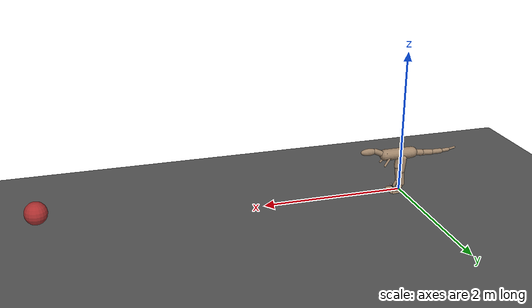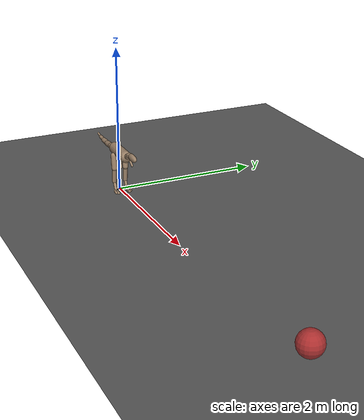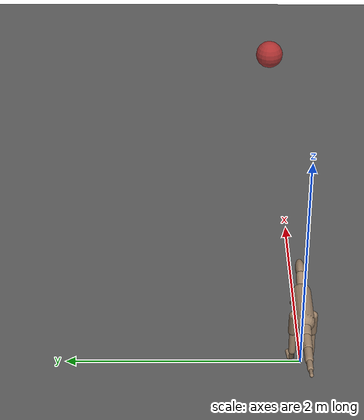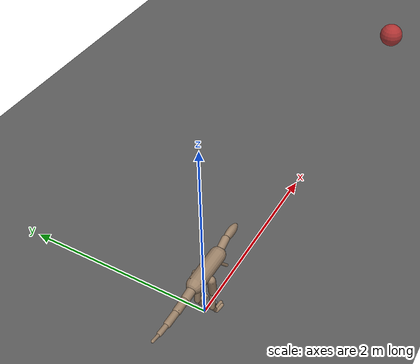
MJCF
<mujoco model="velociraptor">
  <compiler angle="degree" autolimits="true"/>

  <option timestep="0.002" gravity="0 0 -9.81" integrator="implicitfast">
    <flag warmstart="enable"/>
  </option>

  <default>
    <joint limited="true" damping="5.0" armature="0.01"/>
    <geom contype="1" conaffinity="1" friction="1.2 0.005 0.0001"/>
    <motor ctrllimited="true" ctrlrange="-1 1"/>

    <default class="leg_joint">
      <joint damping="10.0" armature="0.05" stiffness="20.0"/>
    </default>

    <!-- Tail joints: high stiffness, limited range (rigid rudder behavior) -->
    <default class="tail_joint">
      <joint damping="15.0" stiffness="40.0" armature="0.03" range="-15 15"/>
    </default>

    <!-- Sickle claw: high torque capability -->
    <default class="claw_joint">
      <joint damping="5.0" armature="0.005"/>
    </default>
  </default>

  <asset>
    <texture type="skybox" builtin="gradient" rgb1="0.6 0.8 1.0" rgb2="0.2 0.4 0.6" width="256" height="256"/>
    <texture name="grid" type="2d" builtin="checker" rgb1="0.4 0.4 0.4" rgb2="0.3 0.3 0.3" width="512" height="512"/>
    <material name="grid_mat" texture="grid" texrepeat="8 8" reflectance="0.1"/>
    <material name="body_mat" rgba="0.6 0.5 0.4 1"/>
    <material name="claw_mat" rgba="0.2 0.2 0.2 1"/>
  </asset>

  <worldbody>
    <!-- Ground plane -->
    <geom name="floor" type="plane" size="50 50 0.1" material="grid_mat" conaffinity="1" contype="1"/>

    <!-- Prey target (mocap body - can be repositioned without recompiling) -->
    <body name="prey" mocap="true" pos="5 0 0.3">
      <geom name="prey_geom" type="sphere" size="0.15" rgba="0.8 0.2 0.2 0.8"
            contype="2" conaffinity="2"/>
    </body>

    <!-- ==================== RAPTOR BODY ==================== -->

    <body name="pelvis" pos="0 0 0.50">
      <freejoint name="root"/>

      <!-- Main body: elongated ellipsoid -->
      <geom name="torso" type="capsule" fromto="-0.15 0 0.05  0.25 0 0.05" size="0.08"
            mass="4.0" material="body_mat"/>

      <!-- Head/neck (simplified) -->
      <geom name="neck" type="capsule" fromto="0.25 0 0.05  0.4 0 0.12" size="0.04"
            mass="0.8" material="body_mat"/>
      <geom name="head" type="ellipsoid" pos="0.5 0 0.12" size="0.12 0.04 0.05"
            mass="0.5" material="body_mat"/>

      <!-- IMU sensor site (for observations) -->
      <site name="imu" pos="0 0 0.05" size="0.02"/>

      <!-- ==================== TAIL ==================== -->
      <!-- 5 segments, hinge joints, acts as rigid counterbalance -->

      <body name="tail_1" pos="-0.15 0 0.05">
        <joint name="tail_1_pitch" class="tail_joint" type="hinge" axis="0 1 0"/>
        <joint name="tail_1_yaw" class="tail_joint" type="hinge" axis="0 0 1" range="-10 10"/>
        <geom name="tail_1_geom" type="capsule" fromto="0 0 0  -0.15 0 -0.02" size="0.045"
              mass="1.0" material="body_mat"/>

        <body name="tail_2" pos="-0.15 0 -0.02">
          <joint name="tail_2_pitch" class="tail_joint" type="hinge" axis="0 1 0"/>
          <geom name="tail_2_geom" type="capsule" fromto="0 0 0  -0.15 0 -0.01" size="0.04"
                mass="0.8" material="body_mat"/>

          <body name="tail_3" pos="-0.15 0 -0.01">
            <joint name="tail_3_pitch" class="tail_joint" type="hinge" axis="0 1 0"/>
            <geom name="tail_3_geom" type="capsule" fromto="0 0 0  -0.15 0 0" size="0.035"
                  mass="0.6" material="body_mat"/>

            <body name="tail_4" pos="-0.15 0 0">
              <joint name="tail_4_pitch" class="tail_joint" type="hinge" axis="0 1 0"/>
              <geom name="tail_4_geom" type="capsule" fromto="0 0 0  -0.12 0 0.01" size="0.025"
                    mass="0.4" material="body_mat"/>

              <body name="tail_5" pos="-0.12 0 0.01">
                <joint name="tail_5_pitch" class="tail_joint" type="hinge" axis="0 1 0"/>
                <geom name="tail_5_geom" type="capsule" fromto="0 0 0  -0.1 0 0.02" size="0.015"
                      mass="0.2" material="body_mat"/>
                <!-- Tail tip sensor for stability reward -->
                <site name="tail_tip" pos="-0.1 0 0.02" size="0.01"/>
              </body>
            </body>
          </body>
        </body>
      </body>

      <!-- ==================== RIGHT LEG ==================== -->

      <body name="r_thigh" pos="0 -0.08 0">
        <!-- Hip: 2 DOF (flexion/extension + abduction) -->
        <joint name="r_hip_pitch" class="leg_joint" type="hinge" axis="0 1 0" range="-60 90" ref="38"
               springref="38"/>
        <joint name="r_hip_roll" class="leg_joint" type="hinge" axis="1 0 0" range="-30 30" springref="0"/>
        <geom name="r_thigh_geom" type="capsule" fromto="0 0 0  0.02 0 -0.18" size="0.04"
              mass="1.2" material="body_mat"/>

        <body name="r_tibia" pos="0.02 0 -0.18">
          <!-- Knee: 1 DOF (Expanded extension limit from -10 to -5 deg) -->
          <joint name="r_knee" class="leg_joint" type="hinge" axis="0 1 0" range="-120 -5" ref="-50"
                 springref="-50"/>
          <geom name="r_tibia_geom" type="capsule" fromto="0 0 0  -0.02 0 -0.2" size="0.03"
                mass="0.8" material="body_mat"/>

          <body name="r_metatarsus" pos="-0.02 0 -0.2">
            <!-- Ankle: 1 DOF (digitigrade stance) -->
            <joint name="r_ankle" class="leg_joint" type="hinge" axis="0 1 0" range="60 160" ref="100"
                   springref="90.5536"/>
            <geom name="r_metatarsus_geom" type="capsule" fromto="0 0 0  0.06 0 -0.12" size="0.02"
                  mass="0.3" material="body_mat"/>
            <site name="r_meta_touch" type="capsule" fromto="0 0 0  0.06 0 -0.12" size="0.045" group="4"/>

            <!-- Toes: 3 separate digits (anatomically correct) -->
            <!-- Digit 3 (central, longest — primary weight-bearing) -->
            <body name="r_toe_d3" pos="0.06 0 -0.12">
              <joint name="r_toe_d3_joint" class="leg_joint" type="hinge" axis="0 1 0" range="-30 60" ref="10"
                     springref="-0.5536"/>
              <geom name="r_toe_d3_geom" type="capsule" fromto="0 0 0  0.10 0 0" size="0.02"
                    mass="0.06" material="body_mat"/>
              <site name="r_foot" pos="0.05 0 0" size="0.08" group="4"/>
            </body>

            <!-- Digit 4 (lateral, shorter — secondary weight-bearing) -->
            <body name="r_toe_d4" pos="0.06 -0.015 -0.12">
              <joint name="r_toe_d4_joint" class="leg_joint" type="hinge" axis="0 1 0" range="-30 60" ref="10"
                     springref="0.6464"/>
              <geom name="r_toe_d4_geom" type="capsule" fromto="0 0 0  0.08 -0.01 0" size="0.018"
                    mass="0.04" material="body_mat"/>
              <!-- Digit-4 touch volume, on its own body for the same reason;
                   it envelops the whole capsule like r_foot does for d3. -->
              <site name="r_d4_touch" pos="0.04 -0.005 0" size="0.07" group="4"/>
            </body>

            <!-- Sickle claw (digit 2) - THE WEAPON -->
            <body name="r_toe_claw" pos="0.06 0.02 -0.12">
              <joint name="r_claw" class="claw_joint" type="hinge" axis="0 1 0" range="-90 30"/>
              <geom name="r_claw_geom" type="capsule" fromto="0 0 0  0.04 0 0.06" size="0.01"
                    mass="0.05" material="claw_mat" contype="2" conaffinity="2"/>
              <!-- Claw tip for strike detection -->
              <site name="r_claw_tip" pos="0.04 0 0.06" size="0.015"/>
            </body>
          </body>
        </body>
      </body>

      <!-- ==================== LEFT LEG ==================== -->

      <body name="l_thigh" pos="0 0.08 0">
        <joint name="l_hip_pitch" class="leg_joint" type="hinge" axis="0 1 0" range="-60 90" ref="38"
               springref="38"/>
        <joint name="l_hip_roll" class="leg_joint" type="hinge" axis="1 0 0" range="-30 30" springref="0"/>
        <geom name="l_thigh_geom" type="capsule" fromto="0 0 0  0.02 0 -0.18" size="0.04"
              mass="1.2" material="body_mat"/>

        <body name="l_tibia" pos="0.02 0 -0.18">
          <!-- Knee: 1 DOF (Expanded extension limit from -10 to -5 deg) -->
          <joint name="l_knee" class="leg_joint" type="hinge" axis="0 1 0" range="-120 -5" ref="-50"
                 springref="-50"/>
          <geom name="l_tibia_geom" type="capsule" fromto="0 0 0  -0.02 0 -0.2" size="0.03"
                mass="0.8" material="body_mat"/>

          <body name="l_metatarsus" pos="-0.02 0 -0.2">
            <joint name="l_ankle" class="leg_joint" type="hinge" axis="0 1 0" range="60 160" ref="100"
                   springref="90.5536"/>
            <geom name="l_metatarsus_geom" type="capsule" fromto="0 0 0  0.06 0 -0.12" size="0.02"
                  mass="0.3" material="body_mat"/>
            <!-- Same own-body rationale as r_meta_touch above. -->
            <site name="l_meta_touch" type="capsule" fromto="0 0 0  0.06 0 -0.12" size="0.045" group="4"/>

            <!-- Toes: 3 separate digits (anatomically correct) -->
            <!-- Digit 3 (central, longest — primary weight-bearing) -->
            <body name="l_toe_d3" pos="0.06 0 -0.12">
              <joint name="l_toe_d3_joint" class="leg_joint" type="hinge" axis="0 1 0" range="-30 60" ref="10"
                     springref="-0.5536"/>
              <geom name="l_toe_d3_geom" type="capsule" fromto="0 0 0  0.10 0 0" size="0.02"
                    mass="0.06" material="body_mat"/>
              <!-- Same coverage and group="4" rationale as r_foot above. -->
              <site name="l_foot" pos="0.05 0 0" size="0.08" group="4"/>
            </body>

            <!-- Digit 4 (lateral, shorter — secondary weight-bearing) -->
            <body name="l_toe_d4" pos="0.06 0.015 -0.12">
              <joint name="l_toe_d4_joint" class="leg_joint" type="hinge" axis="0 1 0" range="-30 60" ref="10"
                     springref="0.6464"/>
              <geom name="l_toe_d4_geom" type="capsule" fromto="0 0 0  0.08 0.01 0" size="0.018"
                    mass="0.04" material="body_mat"/>
              <site name="l_d4_touch" pos="0.04 0.005 0" size="0.07" group="4"/>
            </body>

            <!-- Sickle claw (digit 2) - THE WEAPON -->
            <body name="l_toe_claw" pos="0.06 -0.02 -0.12">
              <joint name="l_claw" class="claw_joint" type="hinge" axis="0 1 0" range="-90 30"/>
              <geom name="l_claw_geom" type="capsule" fromto="0 0 0  0.04 0 0.06" size="0.01"
                    mass="0.05" material="claw_mat" contype="2" conaffinity="2"/>
              <site name="l_claw_tip" pos="0.04 0 0.06" size="0.015"/>
            </body>
          </body>
        </body>
      </body>

      <!-- ==================== FORELIMBS (stubs) ==================== -->
      <!-- Simplified for now - can expand for grappling behavior later -->

      <body name="r_arm" pos="0.2 -0.06 0.02">
        <joint name="r_shoulder_pitch" type="hinge" axis="0 1 0" damping="2.0" range="-30 45"/>
        <joint name="r_shoulder_roll" type="hinge" axis="1 0 0" damping="2.0" range="-20 20"/>
        <geom name="r_arm_geom" type="capsule" fromto="0 0 0  0.08 -0.02 -0.1" size="0.015"
              mass="0.15" material="body_mat"/>
      </body>

      <body name="l_arm" pos="0.2 0.06 0.02">
        <joint name="l_shoulder_pitch" type="hinge" axis="0 1 0" damping="2.0" range="-30 45"/>
        <joint name="l_shoulder_roll" type="hinge" axis="1 0 0" damping="2.0" range="-20 20"/>
        <geom name="l_arm_geom" type="capsule" fromto="0 0 0  0.08 0.02 -0.1" size="0.015"
              mass="0.15" material="body_mat"/>
      </body>

    </body> <!-- end pelvis -->
  </worldbody>

  <!-- ==================== ACTUATORS ==================== -->
  <!-- Position actuators for locomotion, motor for claws -->

  <actuator>
    <!-- NOTE: ctrlrange must be in radians — the compiler angle="degree" setting
         does NOT convert actuator attributes, only joint attributes. -->

    <!-- Right leg -->
    <position name="r_hip_pitch_act" joint="r_hip_pitch" kp="150" forcerange="-225 225" ctrlrange="-1.0472 1.5708"/>
    <position name="r_hip_roll_act" joint="r_hip_roll" kp="100" forcerange="-80 80" ctrlrange="-0.5236 0.5236"/>
    <position name="r_knee_act" joint="r_knee" kp="180" forcerange="-270 270" ctrlrange="-2.0944 -0.0872"/>
    <position name="r_ankle_act" joint="r_ankle" kp="100" forcerange="-150 150" ctrlrange="1.0472 2.7925"/>
    <position name="r_toe_d3_act" joint="r_toe_d3_joint" kp="50" forcerange="-40 40" ctrlrange="-0.5236 1.0472"/>
    <position name="r_toe_d4_act" joint="r_toe_d4_joint" kp="50" forcerange="-40 40" ctrlrange="-0.5236 1.0472"/>
    <motor name="r_claw_act" joint="r_claw" gear="50" ctrlrange="-1 1"/>

    <!-- Left leg -->
    <position name="l_hip_pitch_act" joint="l_hip_pitch" kp="150" forcerange="-225 225" ctrlrange="-1.0472 1.5708"/>
    <position name="l_hip_roll_act" joint="l_hip_roll" kp="100" forcerange="-80 80" ctrlrange="-0.5236 0.5236"/>
    <position name="l_knee_act" joint="l_knee" kp="180" forcerange="-270 270" ctrlrange="-2.0944 -0.0872"/>
    <position name="l_ankle_act" joint="l_ankle" kp="100" forcerange="-150 150" ctrlrange="1.0472 2.7925"/>
    <position name="l_toe_d3_act" joint="l_toe_d3_joint" kp="50" forcerange="-40 40" ctrlrange="-0.5236 1.0472"/>
    <position name="l_toe_d4_act" joint="l_toe_d4_joint" kp="50" forcerange="-40 40" ctrlrange="-0.5236 1.0472"/>
    <motor name="l_claw_act" joint="l_claw" gear="50" ctrlrange="-1 1"/>

    <!-- Tail actuators for active balance control -->
    <position name="tail_1_pitch_act" joint="tail_1_pitch" kp="60" forcerange="-50 50" ctrlrange="-0.2618 0.2618"/>
    <position name="tail_1_yaw_act" joint="tail_1_yaw" kp="50" forcerange="-40 40" ctrlrange="-0.1745 0.1745"/>
    <position name="tail_2_pitch_act" joint="tail_2_pitch" kp="50" forcerange="-40 40" ctrlrange="-0.2618 0.2618"/>
    <position name="tail_3_pitch_act" joint="tail_3_pitch" kp="40" forcerange="-32 32" ctrlrange="-0.2618 0.2618"/>

    <!-- Forelimb actuators (lightweight — for grappling/balance assist) -->
    <position name="r_shoulder_pitch_act" joint="r_shoulder_pitch" kp="15" forcerange="-12 12" ctrlrange="-0.5236 0.7854"/>
    <position name="r_shoulder_roll_act" joint="r_shoulder_roll" kp="15" forcerange="-12 12" ctrlrange="-0.3491 0.3491"/>
    <position name="l_shoulder_pitch_act" joint="l_shoulder_pitch" kp="15" forcerange="-12 12" ctrlrange="-0.5236 0.7854"/>
    <position name="l_shoulder_roll_act" joint="l_shoulder_roll" kp="15" forcerange="-12 12" ctrlrange="-0.3491 0.3491"/>
  </actuator>

  <!-- ==================== SENSORS ==================== -->

  <sensor>
    <!-- IMU-like sensors -->
    <gyro name="pelvis_gyro" site="imu"/>
    <accelerometer name="pelvis_accel" site="imu"/>
    <framequat name="pelvis_orientation" objtype="site" objname="imu"/>

    <touch name="r_foot_touch" site="r_foot"/>
    <touch name="l_foot_touch" site="l_foot"/>

    <!-- Claw tip positions (for strike detection) -->
    <framepos name="r_claw_pos" objtype="site" objname="r_claw_tip"/>
    <framepos name="l_claw_pos" objtype="site" objname="l_claw_tip"/>

    <!-- Tail tip for stability monitoring -->
    <framepos name="tail_tip_pos" objtype="site" objname="tail_tip"/>
    <velocimeter name="tail_tip_linvel" site="tail_tip"/>
    <gyro name="tail_tip_angvel" site="tail_tip"/>

    <!-- Metatarsal-head and digit-4 contact forces (indices 27-30, right
         foot first).  Appended last so every index above stays put. -->
    <touch name="r_meta_touch" site="r_meta_touch"/>
    <touch name="r_d4_touch" site="r_d4_touch"/>
    <touch name="l_meta_touch" site="l_meta_touch"/>
    <touch name="l_d4_touch" site="l_d4_touch"/>
  </sensor>

  <!-- ==================== CONTACT EXCLUSIONS ==================== -->
  <!-- Prevent self-collision in tail chain -->

  <contact>
    <exclude body1="pelvis" body2="tail_1"/>
    <exclude body1="tail_1" body2="tail_2"/>
    <exclude body1="tail_2" body2="tail_3"/>
    <exclude body1="tail_3" body2="tail_4"/>
    <exclude body1="tail_4" body2="tail_5"/>

    <!-- Prevent thigh-torso collision -->
    <exclude body1="pelvis" body2="r_thigh"/>
    <exclude body1="pelvis" body2="l_thigh"/>

    <exclude body1="r_toe_d3" body2="r_toe_d4"/>
    <exclude body1="l_toe_d3" body2="l_toe_d4"/>
  </contact>

  <!-- ==================== KEYFRAMES ==================== -->

  <keyframe>
    <key name="home"
         qpos="0 0 0.505543 0.984808 0 0.173648 0
               0 0 0 0 0 0
               0.663225 0 -0.872665 1.580458 -0.009662 0.011282 0
               0.663225 0 -0.872665 1.580458 -0.009662 0.011282 0
               0 0 0 0"
         ctrl="0.652647 0 -0.869766 1.636419 0.036602 0.030953 0
               0.652647 0 -0.869766 1.636419 0.036602 0.030953 0
               0 0 0 0
               0 0 0 0"/>
  </keyframe>

</mujoco>
